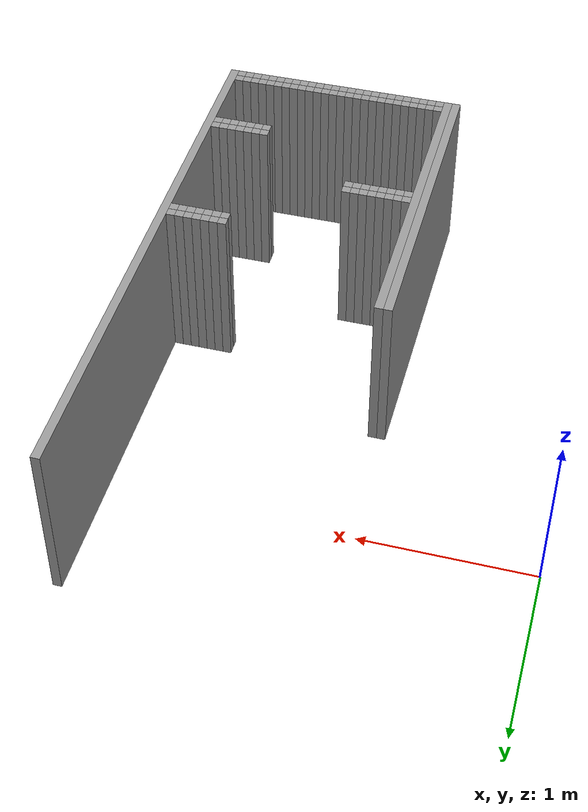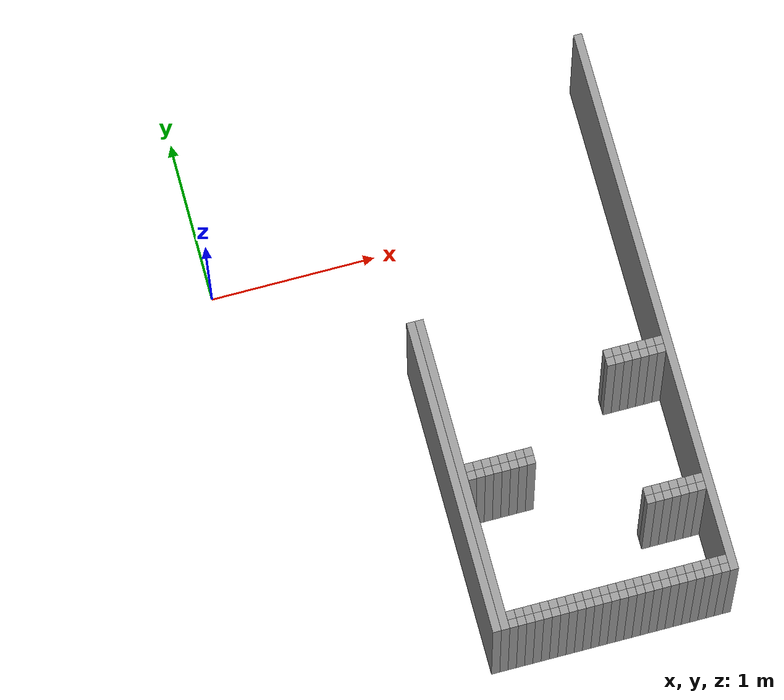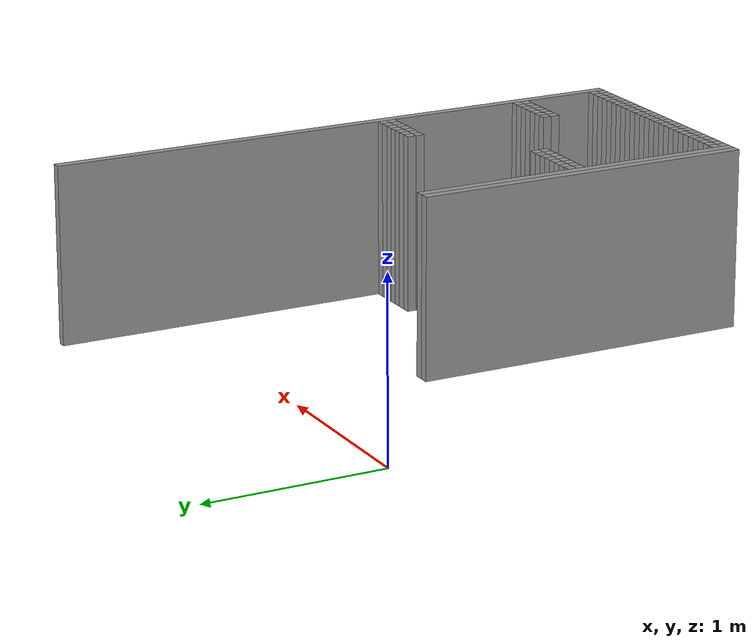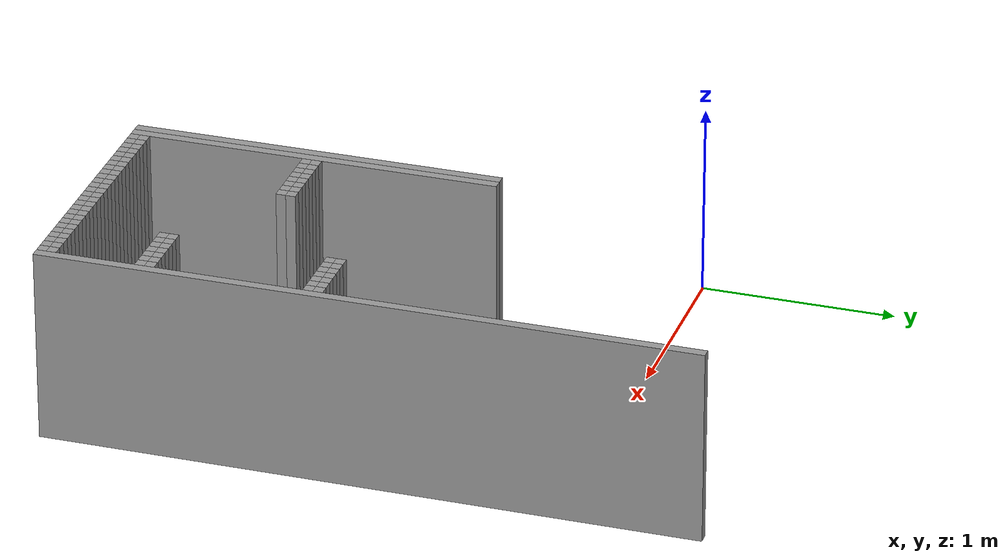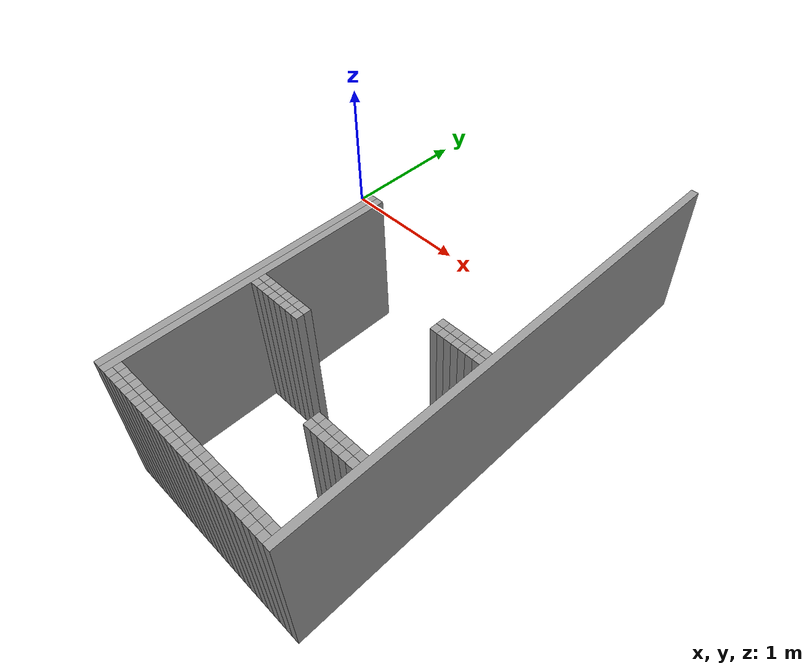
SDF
<sdf version="1.6">
 <model name="optimized_walls">
  <link name="wall_large_62">
   <pose>1.0290 -1.6950 0.5000 0 0 0</pose>
   <collision name="collision"><geometry><box><size>0.0500 1.9000 1.0</size></box></geometry></collision>
   <visual name="visual">
    <geometry><box><size>0.0500 1.9000 1.0</size></box></geometry>
    <material><script><name>Gazebo/Grey</name></script></material>
   </visual>
  </link>
  <link name="wall_large_64">
   <pose>1.0790 -1.6950 0.5000 0 0 0</pose>
   <collision name="collision"><geometry><box><size>0.0500 1.9000 1.0</size></box></geometry></collision>
   <visual name="visual">
    <geometry><box><size>0.0500 1.9000 1.0</size></box></geometry>
    <material><script><name>Gazebo/Grey</name></script></material>
   </visual>
  </link>
  <link name="wall_small_67_0">
   <pose>1.1290 -1.6700 0.5000 0 0 0</pose>
   <collision name="collision"><geometry><box><size>0.05 0.05 1.0</size></box></geometry></collision>
   <visual name="visual">
    <geometry><box><size>0.05 0.05 1.0</size></box></geometry>
    <material><script><name>Gazebo/Grey</name></script></material>
   </visual>
  </link>
  <link name="wall_small_67_1">
   <pose>1.1290 -1.7200 0.5000 0 0 0</pose>
   <collision name="collision"><geometry><box><size>0.05 0.05 1.0</size></box></geometry></collision>
   <visual name="visual">
    <geometry><box><size>0.05 0.05 1.0</size></box></geometry>
    <material><script><name>Gazebo/Grey</name></script></material>
   </visual>
  </link>
  <link name="wall_small_68_0">
   <pose>1.1290 -2.5700 0.5000 0 0 0</pose>
   <collision name="collision"><geometry><box><size>0.05 0.05 1.0</size></box></geometry></collision>
   <visual name="visual">
    <geometry><box><size>0.05 0.05 1.0</size></box></geometry>
    <material><script><name>Gazebo/Grey</name></script></material>
   </visual>
  </link>
  <link name="wall_small_68_1">
   <pose>1.1290 -2.6200 0.5000 0 0 0</pose>
   <collision name="collision"><geometry><box><size>0.05 0.05 1.0</size></box></geometry></collision>
   <visual name="visual">
    <geometry><box><size>0.05 0.05 1.0</size></box></geometry>
    <material><script><name>Gazebo/Grey</name></script></material>
   </visual>
  </link>
  <link name="wall_small_71_0">
   <pose>1.1790 -1.6700 0.5000 0 0 0</pose>
   <collision name="collision"><geometry><box><size>0.05 0.05 1.0</size></box></geometry></collision>
   <visual name="visual">
    <geometry><box><size>0.05 0.05 1.0</size></box></geometry>
    <material><script><name>Gazebo/Grey</name></script></material>
   </visual>
  </link>
  <link name="wall_small_71_1">
   <pose>1.1790 -1.7200 0.5000 0 0 0</pose>
   <collision name="collision"><geometry><box><size>0.05 0.05 1.0</size></box></geometry></collision>
   <visual name="visual">
    <geometry><box><size>0.05 0.05 1.0</size></box></geometry>
    <material><script><name>Gazebo/Grey</name></script></material>
   </visual>
  </link>
  <link name="wall_small_72_0">
   <pose>1.1790 -2.5700 0.5000 0 0 0</pose>
   <collision name="collision"><geometry><box><size>0.05 0.05 1.0</size></box></geometry></collision>
   <visual name="visual">
    <geometry><box><size>0.05 0.05 1.0</size></box></geometry>
    <material><script><name>Gazebo/Grey</name></script></material>
   </visual>
  </link>
  <link name="wall_small_72_1">
   <pose>1.1790 -2.6200 0.5000 0 0 0</pose>
   <collision name="collision"><geometry><box><size>0.05 0.05 1.0</size></box></geometry></collision>
   <visual name="visual">
    <geometry><box><size>0.05 0.05 1.0</size></box></geometry>
    <material><script><name>Gazebo/Grey</name></script></material>
   </visual>
  </link>
  <link name="wall_small_75_0">
   <pose>1.2290 -1.6700 0.5000 0 0 0</pose>
   <collision name="collision"><geometry><box><size>0.05 0.05 1.0</size></box></geometry></collision>
   <visual name="visual">
    <geometry><box><size>0.05 0.05 1.0</size></box></geometry>
    <material><script><name>Gazebo/Grey</name></script></material>
   </visual>
  </link>
  <link name="wall_small_75_1">
   <pose>1.2290 -1.7200 0.5000 0 0 0</pose>
   <collision name="collision"><geometry><box><size>0.05 0.05 1.0</size></box></geometry></collision>
   <visual name="visual">
    <geometry><box><size>0.05 0.05 1.0</size></box></geometry>
    <material><script><name>Gazebo/Grey</name></script></material>
   </visual>
  </link>
  <link name="wall_small_76_0">
   <pose>1.2290 -2.5700 0.5000 0 0 0</pose>
   <collision name="collision"><geometry><box><size>0.05 0.05 1.0</size></box></geometry></collision>
   <visual name="visual">
    <geometry><box><size>0.05 0.05 1.0</size></box></geometry>
    <material><script><name>Gazebo/Grey</name></script></material>
   </visual>
  </link>
  <link name="wall_small_76_1">
   <pose>1.2290 -2.6200 0.5000 0 0 0</pose>
   <collision name="collision"><geometry><box><size>0.05 0.05 1.0</size></box></geometry></collision>
   <visual name="visual">
    <geometry><box><size>0.05 0.05 1.0</size></box></geometry>
    <material><script><name>Gazebo/Grey</name></script></material>
   </visual>
  </link>
  <link name="wall_small_79_0">
   <pose>1.2790 -1.6700 0.5000 0 0 0</pose>
   <collision name="collision"><geometry><box><size>0.05 0.05 1.0</size></box></geometry></collision>
   <visual name="visual">
    <geometry><box><size>0.05 0.05 1.0</size></box></geometry>
    <material><script><name>Gazebo/Grey</name></script></material>
   </visual>
  </link>
  <link name="wall_small_79_1">
   <pose>1.2790 -1.7200 0.5000 0 0 0</pose>
   <collision name="collision"><geometry><box><size>0.05 0.05 1.0</size></box></geometry></collision>
   <visual name="visual">
    <geometry><box><size>0.05 0.05 1.0</size></box></geometry>
    <material><script><name>Gazebo/Grey</name></script></material>
   </visual>
  </link>
  <link name="wall_small_80_0">
   <pose>1.2790 -2.5700 0.5000 0 0 0</pose>
   <collision name="collision"><geometry><box><size>0.05 0.05 1.0</size></box></geometry></collision>
   <visual name="visual">
    <geometry><box><size>0.05 0.05 1.0</size></box></geometry>
    <material><script><name>Gazebo/Grey</name></script></material>
   </visual>
  </link>
  <link name="wall_small_80_1">
   <pose>1.2790 -2.6200 0.5000 0 0 0</pose>
   <collision name="collision"><geometry><box><size>0.05 0.05 1.0</size></box></geometry></collision>
   <visual name="visual">
    <geometry><box><size>0.05 0.05 1.0</size></box></geometry>
    <material><script><name>Gazebo/Grey</name></script></material>
   </visual>
  </link>
  <link name="wall_small_83_0">
   <pose>1.3290 -1.6700 0.5000 0 0 0</pose>
   <collision name="collision"><geometry><box><size>0.05 0.05 1.0</size></box></geometry></collision>
   <visual name="visual">
    <geometry><box><size>0.05 0.05 1.0</size></box></geometry>
    <material><script><name>Gazebo/Grey</name></script></material>
   </visual>
  </link>
  <link name="wall_small_83_1">
   <pose>1.3290 -1.7200 0.5000 0 0 0</pose>
   <collision name="collision"><geometry><box><size>0.05 0.05 1.0</size></box></geometry></collision>
   <visual name="visual">
    <geometry><box><size>0.05 0.05 1.0</size></box></geometry>
    <material><script><name>Gazebo/Grey</name></script></material>
   </visual>
  </link>
  <link name="wall_small_84_0">
   <pose>1.3290 -2.5700 0.5000 0 0 0</pose>
   <collision name="collision"><geometry><box><size>0.05 0.05 1.0</size></box></geometry></collision>
   <visual name="visual">
    <geometry><box><size>0.05 0.05 1.0</size></box></geometry>
    <material><script><name>Gazebo/Grey</name></script></material>
   </visual>
  </link>
  <link name="wall_small_84_1">
   <pose>1.3290 -2.6200 0.5000 0 0 0</pose>
   <collision name="collision"><geometry><box><size>0.05 0.05 1.0</size></box></geometry></collision>
   <visual name="visual">
    <geometry><box><size>0.05 0.05 1.0</size></box></geometry>
    <material><script><name>Gazebo/Grey</name></script></material>
   </visual>
  </link>
  <link name="wall_small_87_0">
   <pose>1.3790 -1.6700 0.5000 0 0 0</pose>
   <collision name="collision"><geometry><box><size>0.05 0.05 1.0</size></box></geometry></collision>
   <visual name="visual">
    <geometry><box><size>0.05 0.05 1.0</size></box></geometry>
    <material><script><name>Gazebo/Grey</name></script></material>
   </visual>
  </link>
  <link name="wall_small_87_1">
   <pose>1.3790 -1.7200 0.5000 0 0 0</pose>
   <collision name="collision"><geometry><box><size>0.05 0.05 1.0</size></box></geometry></collision>
   <visual name="visual">
    <geometry><box><size>0.05 0.05 1.0</size></box></geometry>
    <material><script><name>Gazebo/Grey</name></script></material>
   </visual>
  </link>
  <link name="wall_small_88_0">
   <pose>1.3790 -2.5700 0.5000 0 0 0</pose>
   <collision name="collision"><geometry><box><size>0.05 0.05 1.0</size></box></geometry></collision>
   <visual name="visual">
    <geometry><box><size>0.05 0.05 1.0</size></box></geometry>
    <material><script><name>Gazebo/Grey</name></script></material>
   </visual>
  </link>
  <link name="wall_small_88_1">
   <pose>1.3790 -2.6200 0.5000 0 0 0</pose>
   <collision name="collision"><geometry><box><size>0.05 0.05 1.0</size></box></geometry></collision>
   <visual name="visual">
    <geometry><box><size>0.05 0.05 1.0</size></box></geometry>
    <material><script><name>Gazebo/Grey</name></script></material>
   </visual>
  </link>
  <link name="wall_small_91_0">
   <pose>1.4290 -1.6700 0.5000 0 0 0</pose>
   <collision name="collision"><geometry><box><size>0.05 0.05 1.0</size></box></geometry></collision>
   <visual name="visual">
    <geometry><box><size>0.05 0.05 1.0</size></box></geometry>
    <material><script><name>Gazebo/Grey</name></script></material>
   </visual>
  </link>
  <link name="wall_small_91_1">
   <pose>1.4290 -1.7200 0.5000 0 0 0</pose>
   <collision name="collision"><geometry><box><size>0.05 0.05 1.0</size></box></geometry></collision>
   <visual name="visual">
    <geometry><box><size>0.05 0.05 1.0</size></box></geometry>
    <material><script><name>Gazebo/Grey</name></script></material>
   </visual>
  </link>
  <link name="wall_small_92_0">
   <pose>1.4290 -2.5700 0.5000 0 0 0</pose>
   <collision name="collision"><geometry><box><size>0.05 0.05 1.0</size></box></geometry></collision>
   <visual name="visual">
    <geometry><box><size>0.05 0.05 1.0</size></box></geometry>
    <material><script><name>Gazebo/Grey</name></script></material>
   </visual>
  </link>
  <link name="wall_small_92_1">
   <pose>1.4290 -2.6200 0.5000 0 0 0</pose>
   <collision name="collision"><geometry><box><size>0.05 0.05 1.0</size></box></geometry></collision>
   <visual name="visual">
    <geometry><box><size>0.05 0.05 1.0</size></box></geometry>
    <material><script><name>Gazebo/Grey</name></script></material>
   </visual>
  </link>
  <link name="wall_small_95_0">
   <pose>1.4790 -1.6700 0.5000 0 0 0</pose>
   <collision name="collision"><geometry><box><size>0.05 0.05 1.0</size></box></geometry></collision>
   <visual name="visual">
    <geometry><box><size>0.05 0.05 1.0</size></box></geometry>
    <material><script><name>Gazebo/Grey</name></script></material>
   </visual>
  </link>
  <link name="wall_small_95_1">
   <pose>1.4790 -1.7200 0.5000 0 0 0</pose>
   <collision name="collision"><geometry><box><size>0.05 0.05 1.0</size></box></geometry></collision>
   <visual name="visual">
    <geometry><box><size>0.05 0.05 1.0</size></box></geometry>
    <material><script><name>Gazebo/Grey</name></script></material>
   </visual>
  </link>
  <link name="wall_small_96_0">
   <pose>1.4790 -2.5700 0.5000 0 0 0</pose>
   <collision name="collision"><geometry><box><size>0.05 0.05 1.0</size></box></geometry></collision>
   <visual name="visual">
    <geometry><box><size>0.05 0.05 1.0</size></box></geometry>
    <material><script><name>Gazebo/Grey</name></script></material>
   </visual>
  </link>
  <link name="wall_small_96_1">
   <pose>1.4790 -2.6200 0.5000 0 0 0</pose>
   <collision name="collision"><geometry><box><size>0.05 0.05 1.0</size></box></geometry></collision>
   <visual name="visual">
    <geometry><box><size>0.05 0.05 1.0</size></box></geometry>
    <material><script><name>Gazebo/Grey</name></script></material>
   </visual>
  </link>
  <link name="wall_small_98_0">
   <pose>1.5290 -2.5700 0.5000 0 0 0</pose>
   <collision name="collision"><geometry><box><size>0.05 0.05 1.0</size></box></geometry></collision>
   <visual name="visual">
    <geometry><box><size>0.05 0.05 1.0</size></box></geometry>
    <material><script><name>Gazebo/Grey</name></script></material>
   </visual>
  </link>
  <link name="wall_small_98_1">
   <pose>1.5290 -2.6200 0.5000 0 0 0</pose>
   <collision name="collision"><geometry><box><size>0.05 0.05 1.0</size></box></geometry></collision>
   <visual name="visual">
    <geometry><box><size>0.05 0.05 1.0</size></box></geometry>
    <material><script><name>Gazebo/Grey</name></script></material>
   </visual>
  </link>
  <link name="wall_small_100_0">
   <pose>1.5790 -2.5700 0.5000 0 0 0</pose>
   <collision name="collision"><geometry><box><size>0.05 0.05 1.0</size></box></geometry></collision>
   <visual name="visual">
    <geometry><box><size>0.05 0.05 1.0</size></box></geometry>
    <material><script><name>Gazebo/Grey</name></script></material>
   </visual>
  </link>
  <link name="wall_small_100_1">
   <pose>1.5790 -2.6200 0.5000 0 0 0</pose>
   <collision name="collision"><geometry><box><size>0.05 0.05 1.0</size></box></geometry></collision>
   <visual name="visual">
    <geometry><box><size>0.05 0.05 1.0</size></box></geometry>
    <material><script><name>Gazebo/Grey</name></script></material>
   </visual>
  </link>
  <link name="wall_small_102_0">
   <pose>1.6290 -2.5700 0.5000 0 0 0</pose>
   <collision name="collision"><geometry><box><size>0.05 0.05 1.0</size></box></geometry></collision>
   <visual name="visual">
    <geometry><box><size>0.05 0.05 1.0</size></box></geometry>
    <material><script><name>Gazebo/Grey</name></script></material>
   </visual>
  </link>
  <link name="wall_small_102_1">
   <pose>1.6290 -2.6200 0.5000 0 0 0</pose>
   <collision name="collision"><geometry><box><size>0.05 0.05 1.0</size></box></geometry></collision>
   <visual name="visual">
    <geometry><box><size>0.05 0.05 1.0</size></box></geometry>
    <material><script><name>Gazebo/Grey</name></script></material>
   </visual>
  </link>
  <link name="wall_small_104_0">
   <pose>1.6790 -2.5700 0.5000 0 0 0</pose>
   <collision name="collision"><geometry><box><size>0.05 0.05 1.0</size></box></geometry></collision>
   <visual name="visual">
    <geometry><box><size>0.05 0.05 1.0</size></box></geometry>
    <material><script><name>Gazebo/Grey</name></script></material>
   </visual>
  </link>
  <link name="wall_small_104_1">
   <pose>1.6790 -2.6200 0.5000 0 0 0</pose>
   <collision name="collision"><geometry><box><size>0.05 0.05 1.0</size></box></geometry></collision>
   <visual name="visual">
    <geometry><box><size>0.05 0.05 1.0</size></box></geometry>
    <material><script><name>Gazebo/Grey</name></script></material>
   </visual>
  </link>
  <link name="wall_small_106_0">
   <pose>1.7290 -2.5700 0.5000 0 0 0</pose>
   <collision name="collision"><geometry><box><size>0.05 0.05 1.0</size></box></geometry></collision>
   <visual name="visual">
    <geometry><box><size>0.05 0.05 1.0</size></box></geometry>
    <material><script><name>Gazebo/Grey</name></script></material>
   </visual>
  </link>
  <link name="wall_small_106_1">
   <pose>1.7290 -2.6200 0.5000 0 0 0</pose>
   <collision name="collision"><geometry><box><size>0.05 0.05 1.0</size></box></geometry></collision>
   <visual name="visual">
    <geometry><box><size>0.05 0.05 1.0</size></box></geometry>
    <material><script><name>Gazebo/Grey</name></script></material>
   </visual>
  </link>
  <link name="wall_small_108_0">
   <pose>1.7790 -2.5700 0.5000 0 0 0</pose>
   <collision name="collision"><geometry><box><size>0.05 0.05 1.0</size></box></geometry></collision>
   <visual name="visual">
    <geometry><box><size>0.05 0.05 1.0</size></box></geometry>
    <material><script><name>Gazebo/Grey</name></script></material>
   </visual>
  </link>
  <link name="wall_small_108_1">
   <pose>1.7790 -2.6200 0.5000 0 0 0</pose>
   <collision name="collision"><geometry><box><size>0.05 0.05 1.0</size></box></geometry></collision>
   <visual name="visual">
    <geometry><box><size>0.05 0.05 1.0</size></box></geometry>
    <material><script><name>Gazebo/Grey</name></script></material>
   </visual>
  </link>
  <link name="wall_small_110_0">
   <pose>1.8290 -2.5700 0.5000 0 0 0</pose>
   <collision name="collision"><geometry><box><size>0.05 0.05 1.0</size></box></geometry></collision>
   <visual name="visual">
    <geometry><box><size>0.05 0.05 1.0</size></box></geometry>
    <material><script><name>Gazebo/Grey</name></script></material>
   </visual>
  </link>
  <link name="wall_small_110_1">
   <pose>1.8290 -2.6200 0.5000 0 0 0</pose>
   <collision name="collision"><geometry><box><size>0.05 0.05 1.0</size></box></geometry></collision>
   <visual name="visual">
    <geometry><box><size>0.05 0.05 1.0</size></box></geometry>
    <material><script><name>Gazebo/Grey</name></script></material>
   </visual>
  </link>
  <link name="wall_small_112_0">
   <pose>1.8790 -2.5700 0.5000 0 0 0</pose>
   <collision name="collision"><geometry><box><size>0.05 0.05 1.0</size></box></geometry></collision>
   <visual name="visual">
    <geometry><box><size>0.05 0.05 1.0</size></box></geometry>
    <material><script><name>Gazebo/Grey</name></script></material>
   </visual>
  </link>
  <link name="wall_small_112_1">
   <pose>1.8790 -2.6200 0.5000 0 0 0</pose>
   <collision name="collision"><geometry><box><size>0.05 0.05 1.0</size></box></geometry></collision>
   <visual name="visual">
    <geometry><box><size>0.05 0.05 1.0</size></box></geometry>
    <material><script><name>Gazebo/Grey</name></script></material>
   </visual>
  </link>
  <link name="wall_small_114_0">
   <pose>1.9290 -2.5700 0.5000 0 0 0</pose>
   <collision name="collision"><geometry><box><size>0.05 0.05 1.0</size></box></geometry></collision>
   <visual name="visual">
    <geometry><box><size>0.05 0.05 1.0</size></box></geometry>
    <material><script><name>Gazebo/Grey</name></script></material>
   </visual>
  </link>
  <link name="wall_small_114_1">
   <pose>1.9290 -2.6200 0.5000 0 0 0</pose>
   <collision name="collision"><geometry><box><size>0.05 0.05 1.0</size></box></geometry></collision>
   <visual name="visual">
    <geometry><box><size>0.05 0.05 1.0</size></box></geometry>
    <material><script><name>Gazebo/Grey</name></script></material>
   </visual>
  </link>
  <link name="wall_small_116_0">
   <pose>1.9790 -2.5700 0.5000 0 0 0</pose>
   <collision name="collision"><geometry><box><size>0.05 0.05 1.0</size></box></geometry></collision>
   <visual name="visual">
    <geometry><box><size>0.05 0.05 1.0</size></box></geometry>
    <material><script><name>Gazebo/Grey</name></script></material>
   </visual>
  </link>
  <link name="wall_small_116_1">
   <pose>1.9790 -2.6200 0.5000 0 0 0</pose>
   <collision name="collision"><geometry><box><size>0.05 0.05 1.0</size></box></geometry></collision>
   <visual name="visual">
    <geometry><box><size>0.05 0.05 1.0</size></box></geometry>
    <material><script><name>Gazebo/Grey</name></script></material>
   </visual>
  </link>
  <link name="wall_small_118_0">
   <pose>2.0290 -2.5700 0.5000 0 0 0</pose>
   <collision name="collision"><geometry><box><size>0.05 0.05 1.0</size></box></geometry></collision>
   <visual name="visual">
    <geometry><box><size>0.05 0.05 1.0</size></box></geometry>
    <material><script><name>Gazebo/Grey</name></script></material>
   </visual>
  </link>
  <link name="wall_small_118_1">
   <pose>2.0290 -2.6200 0.5000 0 0 0</pose>
   <collision name="collision"><geometry><box><size>0.05 0.05 1.0</size></box></geometry></collision>
   <visual name="visual">
    <geometry><box><size>0.05 0.05 1.0</size></box></geometry>
    <material><script><name>Gazebo/Grey</name></script></material>
   </visual>
  </link>
  <link name="wall_small_121_0">
   <pose>2.0790 -1.2200 0.5000 0 0 0</pose>
   <collision name="collision"><geometry><box><size>0.05 0.05 1.0</size></box></geometry></collision>
   <visual name="visual">
    <geometry><box><size>0.05 0.05 1.0</size></box></geometry>
    <material><script><name>Gazebo/Grey</name></script></material>
   </visual>
  </link>
  <link name="wall_small_121_1">
   <pose>2.0790 -1.2700 0.5000 0 0 0</pose>
   <collision name="collision"><geometry><box><size>0.05 0.05 1.0</size></box></geometry></collision>
   <visual name="visual">
    <geometry><box><size>0.05 0.05 1.0</size></box></geometry>
    <material><script><name>Gazebo/Grey</name></script></material>
   </visual>
  </link>
  <link name="wall_small_122_0">
   <pose>2.0790 -2.0700 0.5000 0 0 0</pose>
   <collision name="collision"><geometry><box><size>0.05 0.05 1.0</size></box></geometry></collision>
   <visual name="visual">
    <geometry><box><size>0.05 0.05 1.0</size></box></geometry>
    <material><script><name>Gazebo/Grey</name></script></material>
   </visual>
  </link>
  <link name="wall_small_122_1">
   <pose>2.0790 -2.1200 0.5000 0 0 0</pose>
   <collision name="collision"><geometry><box><size>0.05 0.05 1.0</size></box></geometry></collision>
   <visual name="visual">
    <geometry><box><size>0.05 0.05 1.0</size></box></geometry>
    <material><script><name>Gazebo/Grey</name></script></material>
   </visual>
  </link>
  <link name="wall_small_123_0">
   <pose>2.0790 -2.5700 0.5000 0 0 0</pose>
   <collision name="collision"><geometry><box><size>0.05 0.05 1.0</size></box></geometry></collision>
   <visual name="visual">
    <geometry><box><size>0.05 0.05 1.0</size></box></geometry>
    <material><script><name>Gazebo/Grey</name></script></material>
   </visual>
  </link>
  <link name="wall_small_123_1">
   <pose>2.0790 -2.6200 0.5000 0 0 0</pose>
   <collision name="collision"><geometry><box><size>0.05 0.05 1.0</size></box></geometry></collision>
   <visual name="visual">
    <geometry><box><size>0.05 0.05 1.0</size></box></geometry>
    <material><script><name>Gazebo/Grey</name></script></material>
   </visual>
  </link>
  <link name="wall_small_126_0">
   <pose>2.1290 -1.2200 0.5000 0 0 0</pose>
   <collision name="collision"><geometry><box><size>0.05 0.05 1.0</size></box></geometry></collision>
   <visual name="visual">
    <geometry><box><size>0.05 0.05 1.0</size></box></geometry>
    <material><script><name>Gazebo/Grey</name></script></material>
   </visual>
  </link>
  <link name="wall_small_126_1">
   <pose>2.1290 -1.2700 0.5000 0 0 0</pose>
   <collision name="collision"><geometry><box><size>0.05 0.05 1.0</size></box></geometry></collision>
   <visual name="visual">
    <geometry><box><size>0.05 0.05 1.0</size></box></geometry>
    <material><script><name>Gazebo/Grey</name></script></material>
   </visual>
  </link>
  <link name="wall_small_127_0">
   <pose>2.1290 -2.0700 0.5000 0 0 0</pose>
   <collision name="collision"><geometry><box><size>0.05 0.05 1.0</size></box></geometry></collision>
   <visual name="visual">
    <geometry><box><size>0.05 0.05 1.0</size></box></geometry>
    <material><script><name>Gazebo/Grey</name></script></material>
   </visual>
  </link>
  <link name="wall_small_127_1">
   <pose>2.1290 -2.1200 0.5000 0 0 0</pose>
   <collision name="collision"><geometry><box><size>0.05 0.05 1.0</size></box></geometry></collision>
   <visual name="visual">
    <geometry><box><size>0.05 0.05 1.0</size></box></geometry>
    <material><script><name>Gazebo/Grey</name></script></material>
   </visual>
  </link>
  <link name="wall_small_128_0">
   <pose>2.1290 -2.5700 0.5000 0 0 0</pose>
   <collision name="collision"><geometry><box><size>0.05 0.05 1.0</size></box></geometry></collision>
   <visual name="visual">
    <geometry><box><size>0.05 0.05 1.0</size></box></geometry>
    <material><script><name>Gazebo/Grey</name></script></material>
   </visual>
  </link>
  <link name="wall_small_128_1">
   <pose>2.1290 -2.6200 0.5000 0 0 0</pose>
   <collision name="collision"><geometry><box><size>0.05 0.05 1.0</size></box></geometry></collision>
   <visual name="visual">
    <geometry><box><size>0.05 0.05 1.0</size></box></geometry>
    <material><script><name>Gazebo/Grey</name></script></material>
   </visual>
  </link>
  <link name="wall_small_131_0">
   <pose>2.1790 -1.2200 0.5000 0 0 0</pose>
   <collision name="collision"><geometry><box><size>0.05 0.05 1.0</size></box></geometry></collision>
   <visual name="visual">
    <geometry><box><size>0.05 0.05 1.0</size></box></geometry>
    <material><script><name>Gazebo/Grey</name></script></material>
   </visual>
  </link>
  <link name="wall_small_131_1">
   <pose>2.1790 -1.2700 0.5000 0 0 0</pose>
   <collision name="collision"><geometry><box><size>0.05 0.05 1.0</size></box></geometry></collision>
   <visual name="visual">
    <geometry><box><size>0.05 0.05 1.0</size></box></geometry>
    <material><script><name>Gazebo/Grey</name></script></material>
   </visual>
  </link>
  <link name="wall_small_132_0">
   <pose>2.1790 -2.0700 0.5000 0 0 0</pose>
   <collision name="collision"><geometry><box><size>0.05 0.05 1.0</size></box></geometry></collision>
   <visual name="visual">
    <geometry><box><size>0.05 0.05 1.0</size></box></geometry>
    <material><script><name>Gazebo/Grey</name></script></material>
   </visual>
  </link>
  <link name="wall_small_132_1">
   <pose>2.1790 -2.1200 0.5000 0 0 0</pose>
   <collision name="collision"><geometry><box><size>0.05 0.05 1.0</size></box></geometry></collision>
   <visual name="visual">
    <geometry><box><size>0.05 0.05 1.0</size></box></geometry>
    <material><script><name>Gazebo/Grey</name></script></material>
   </visual>
  </link>
  <link name="wall_small_133_0">
   <pose>2.1790 -2.5700 0.5000 0 0 0</pose>
   <collision name="collision"><geometry><box><size>0.05 0.05 1.0</size></box></geometry></collision>
   <visual name="visual">
    <geometry><box><size>0.05 0.05 1.0</size></box></geometry>
    <material><script><name>Gazebo/Grey</name></script></material>
   </visual>
  </link>
  <link name="wall_small_133_1">
   <pose>2.1790 -2.6200 0.5000 0 0 0</pose>
   <collision name="collision"><geometry><box><size>0.05 0.05 1.0</size></box></geometry></collision>
   <visual name="visual">
    <geometry><box><size>0.05 0.05 1.0</size></box></geometry>
    <material><script><name>Gazebo/Grey</name></script></material>
   </visual>
  </link>
  <link name="wall_small_136_0">
   <pose>2.2290 -1.2200 0.5000 0 0 0</pose>
   <collision name="collision"><geometry><box><size>0.05 0.05 1.0</size></box></geometry></collision>
   <visual name="visual">
    <geometry><box><size>0.05 0.05 1.0</size></box></geometry>
    <material><script><name>Gazebo/Grey</name></script></material>
   </visual>
  </link>
  <link name="wall_small_136_1">
   <pose>2.2290 -1.2700 0.5000 0 0 0</pose>
   <collision name="collision"><geometry><box><size>0.05 0.05 1.0</size></box></geometry></collision>
   <visual name="visual">
    <geometry><box><size>0.05 0.05 1.0</size></box></geometry>
    <material><script><name>Gazebo/Grey</name></script></material>
   </visual>
  </link>
  <link name="wall_small_137_0">
   <pose>2.2290 -2.0700 0.5000 0 0 0</pose>
   <collision name="collision"><geometry><box><size>0.05 0.05 1.0</size></box></geometry></collision>
   <visual name="visual">
    <geometry><box><size>0.05 0.05 1.0</size></box></geometry>
    <material><script><name>Gazebo/Grey</name></script></material>
   </visual>
  </link>
  <link name="wall_small_137_1">
   <pose>2.2290 -2.1200 0.5000 0 0 0</pose>
   <collision name="collision"><geometry><box><size>0.05 0.05 1.0</size></box></geometry></collision>
   <visual name="visual">
    <geometry><box><size>0.05 0.05 1.0</size></box></geometry>
    <material><script><name>Gazebo/Grey</name></script></material>
   </visual>
  </link>
  <link name="wall_small_138_0">
   <pose>2.2290 -2.5700 0.5000 0 0 0</pose>
   <collision name="collision"><geometry><box><size>0.05 0.05 1.0</size></box></geometry></collision>
   <visual name="visual">
    <geometry><box><size>0.05 0.05 1.0</size></box></geometry>
    <material><script><name>Gazebo/Grey</name></script></material>
   </visual>
  </link>
  <link name="wall_small_138_1">
   <pose>2.2290 -2.6200 0.5000 0 0 0</pose>
   <collision name="collision"><geometry><box><size>0.05 0.05 1.0</size></box></geometry></collision>
   <visual name="visual">
    <geometry><box><size>0.05 0.05 1.0</size></box></geometry>
    <material><script><name>Gazebo/Grey</name></script></material>
   </visual>
  </link>
  <link name="wall_small_141_0">
   <pose>2.2790 -1.2200 0.5000 0 0 0</pose>
   <collision name="collision"><geometry><box><size>0.05 0.05 1.0</size></box></geometry></collision>
   <visual name="visual">
    <geometry><box><size>0.05 0.05 1.0</size></box></geometry>
    <material><script><name>Gazebo/Grey</name></script></material>
   </visual>
  </link>
  <link name="wall_small_141_1">
   <pose>2.2790 -1.2700 0.5000 0 0 0</pose>
   <collision name="collision"><geometry><box><size>0.05 0.05 1.0</size></box></geometry></collision>
   <visual name="visual">
    <geometry><box><size>0.05 0.05 1.0</size></box></geometry>
    <material><script><name>Gazebo/Grey</name></script></material>
   </visual>
  </link>
  <link name="wall_small_142_0">
   <pose>2.2790 -2.0700 0.5000 0 0 0</pose>
   <collision name="collision"><geometry><box><size>0.05 0.05 1.0</size></box></geometry></collision>
   <visual name="visual">
    <geometry><box><size>0.05 0.05 1.0</size></box></geometry>
    <material><script><name>Gazebo/Grey</name></script></material>
   </visual>
  </link>
  <link name="wall_small_142_1">
   <pose>2.2790 -2.1200 0.5000 0 0 0</pose>
   <collision name="collision"><geometry><box><size>0.05 0.05 1.0</size></box></geometry></collision>
   <visual name="visual">
    <geometry><box><size>0.05 0.05 1.0</size></box></geometry>
    <material><script><name>Gazebo/Grey</name></script></material>
   </visual>
  </link>
  <link name="wall_small_143_0">
   <pose>2.2790 -2.5700 0.5000 0 0 0</pose>
   <collision name="collision"><geometry><box><size>0.05 0.05 1.0</size></box></geometry></collision>
   <visual name="visual">
    <geometry><box><size>0.05 0.05 1.0</size></box></geometry>
    <material><script><name>Gazebo/Grey</name></script></material>
   </visual>
  </link>
  <link name="wall_small_143_1">
   <pose>2.2790 -2.6200 0.5000 0 0 0</pose>
   <collision name="collision"><geometry><box><size>0.05 0.05 1.0</size></box></geometry></collision>
   <visual name="visual">
    <geometry><box><size>0.05 0.05 1.0</size></box></geometry>
    <material><script><name>Gazebo/Grey</name></script></material>
   </visual>
  </link>
  <link name="wall_small_146_0">
   <pose>2.3290 -1.2200 0.5000 0 0 0</pose>
   <collision name="collision"><geometry><box><size>0.05 0.05 1.0</size></box></geometry></collision>
   <visual name="visual">
    <geometry><box><size>0.05 0.05 1.0</size></box></geometry>
    <material><script><name>Gazebo/Grey</name></script></material>
   </visual>
  </link>
  <link name="wall_small_146_1">
   <pose>2.3290 -1.2700 0.5000 0 0 0</pose>
   <collision name="collision"><geometry><box><size>0.05 0.05 1.0</size></box></geometry></collision>
   <visual name="visual">
    <geometry><box><size>0.05 0.05 1.0</size></box></geometry>
    <material><script><name>Gazebo/Grey</name></script></material>
   </visual>
  </link>
  <link name="wall_small_147_0">
   <pose>2.3290 -2.0700 0.5000 0 0 0</pose>
   <collision name="collision"><geometry><box><size>0.05 0.05 1.0</size></box></geometry></collision>
   <visual name="visual">
    <geometry><box><size>0.05 0.05 1.0</size></box></geometry>
    <material><script><name>Gazebo/Grey</name></script></material>
   </visual>
  </link>
  <link name="wall_small_147_1">
   <pose>2.3290 -2.1200 0.5000 0 0 0</pose>
   <collision name="collision"><geometry><box><size>0.05 0.05 1.0</size></box></geometry></collision>
   <visual name="visual">
    <geometry><box><size>0.05 0.05 1.0</size></box></geometry>
    <material><script><name>Gazebo/Grey</name></script></material>
   </visual>
  </link>
  <link name="wall_small_148_0">
   <pose>2.3290 -2.5700 0.5000 0 0 0</pose>
   <collision name="collision"><geometry><box><size>0.05 0.05 1.0</size></box></geometry></collision>
   <visual name="visual">
    <geometry><box><size>0.05 0.05 1.0</size></box></geometry>
    <material><script><name>Gazebo/Grey</name></script></material>
   </visual>
  </link>
  <link name="wall_small_148_1">
   <pose>2.3290 -2.6200 0.5000 0 0 0</pose>
   <collision name="collision"><geometry><box><size>0.05 0.05 1.0</size></box></geometry></collision>
   <visual name="visual">
    <geometry><box><size>0.05 0.05 1.0</size></box></geometry>
    <material><script><name>Gazebo/Grey</name></script></material>
   </visual>
  </link>
  <link name="wall_small_151_0">
   <pose>2.3790 -1.2200 0.5000 0 0 0</pose>
   <collision name="collision"><geometry><box><size>0.05 0.05 1.0</size></box></geometry></collision>
   <visual name="visual">
    <geometry><box><size>0.05 0.05 1.0</size></box></geometry>
    <material><script><name>Gazebo/Grey</name></script></material>
   </visual>
  </link>
  <link name="wall_small_151_1">
   <pose>2.3790 -1.2700 0.5000 0 0 0</pose>
   <collision name="collision"><geometry><box><size>0.05 0.05 1.0</size></box></geometry></collision>
   <visual name="visual">
    <geometry><box><size>0.05 0.05 1.0</size></box></geometry>
    <material><script><name>Gazebo/Grey</name></script></material>
   </visual>
  </link>
  <link name="wall_small_152_0">
   <pose>2.3790 -2.0700 0.5000 0 0 0</pose>
   <collision name="collision"><geometry><box><size>0.05 0.05 1.0</size></box></geometry></collision>
   <visual name="visual">
    <geometry><box><size>0.05 0.05 1.0</size></box></geometry>
    <material><script><name>Gazebo/Grey</name></script></material>
   </visual>
  </link>
  <link name="wall_small_152_1">
   <pose>2.3790 -2.1200 0.5000 0 0 0</pose>
   <collision name="collision"><geometry><box><size>0.05 0.05 1.0</size></box></geometry></collision>
   <visual name="visual">
    <geometry><box><size>0.05 0.05 1.0</size></box></geometry>
    <material><script><name>Gazebo/Grey</name></script></material>
   </visual>
  </link>
  <link name="wall_small_153_0">
   <pose>2.3790 -2.5700 0.5000 0 0 0</pose>
   <collision name="collision"><geometry><box><size>0.05 0.05 1.0</size></box></geometry></collision>
   <visual name="visual">
    <geometry><box><size>0.05 0.05 1.0</size></box></geometry>
    <material><script><name>Gazebo/Grey</name></script></material>
   </visual>
  </link>
  <link name="wall_small_153_1">
   <pose>2.3790 -2.6200 0.5000 0 0 0</pose>
   <collision name="collision"><geometry><box><size>0.05 0.05 1.0</size></box></geometry></collision>
   <visual name="visual">
    <geometry><box><size>0.05 0.05 1.0</size></box></geometry>
    <material><script><name>Gazebo/Grey</name></script></material>
   </visual>
  </link>
  <link name="wall_large_154">
   <pose>2.4290 -0.9700 0.5000 0 0 0</pose>
   <collision name="collision"><geometry><box><size>0.0500 3.3500 1.0</size></box></geometry></collision>
   <visual name="visual">
    <geometry><box><size>0.0500 3.3500 1.0</size></box></geometry>
    <material><script><name>Gazebo/Grey</name></script></material>
   </visual>
  </link>
 </model>
</sdf>
